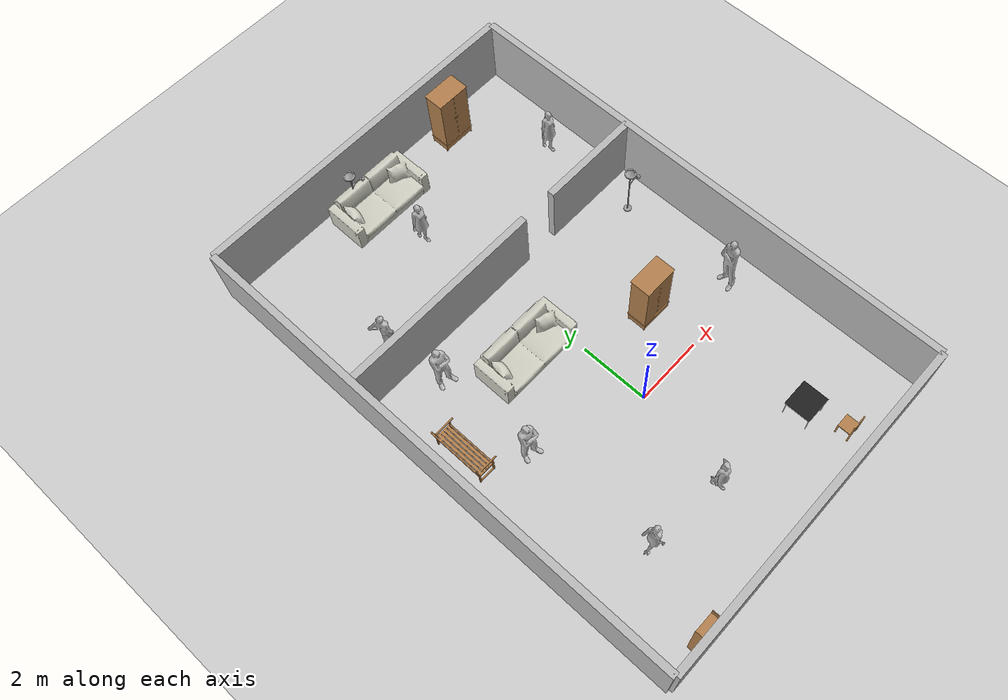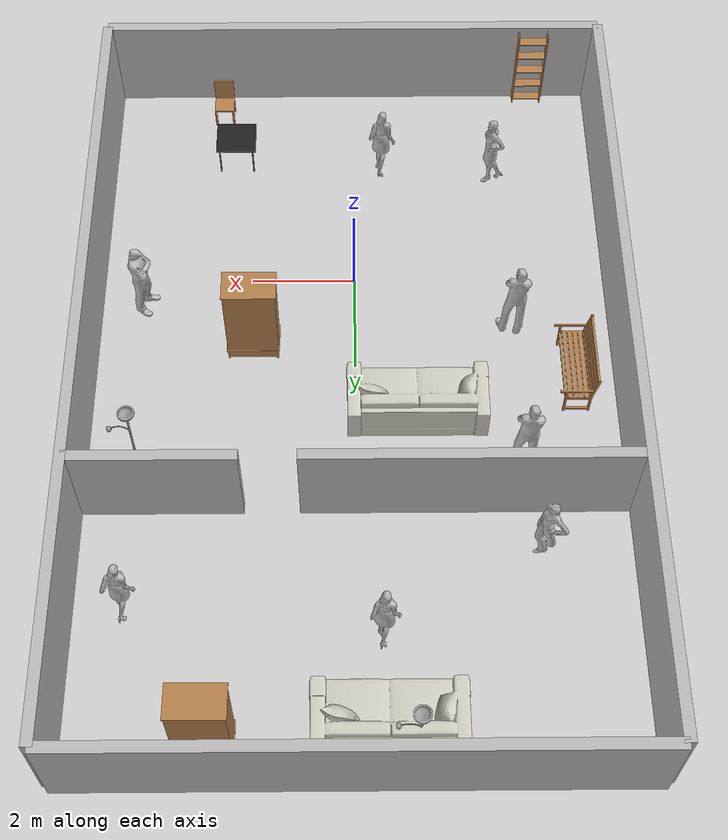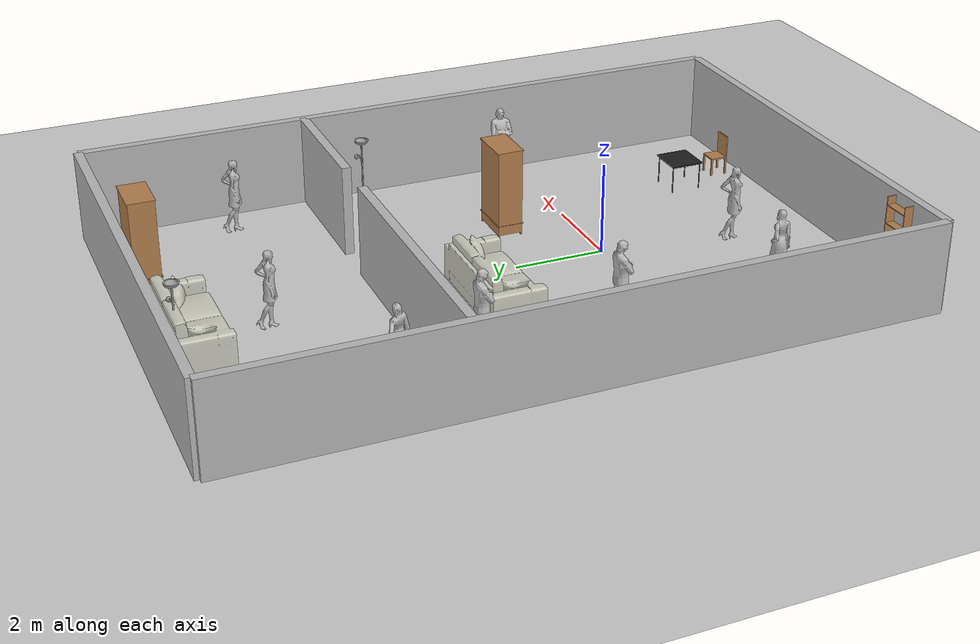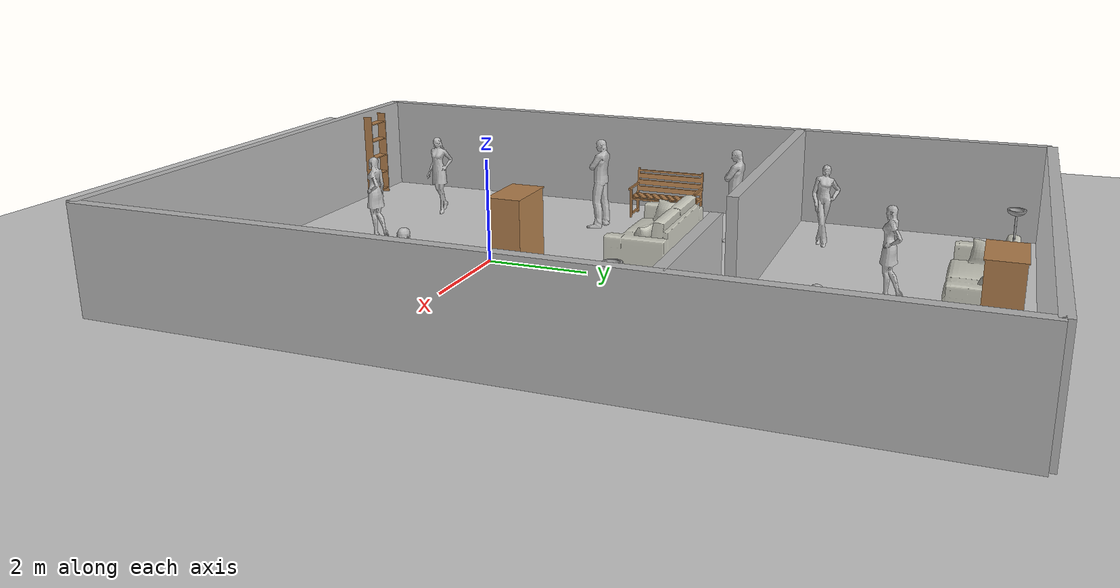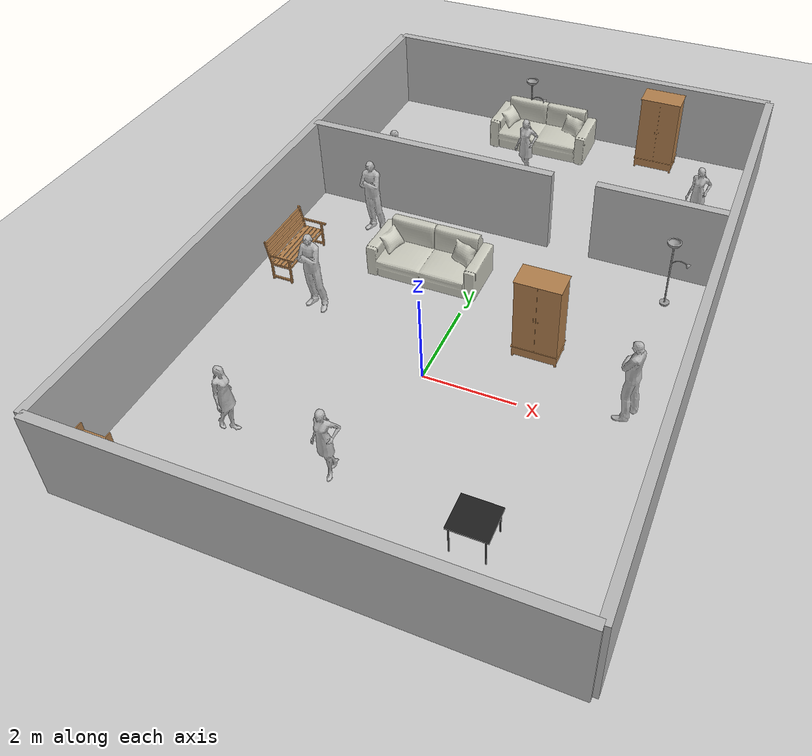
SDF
<sdf version="1.6">
 <world name="default">
  <physics name="default_physics" default="0" type="ode">
   <ode>
    <solver>
     <type>quick</type>
     <iters>20</iters>
     <sor>1</sor>
     <use_dynamic_moi_rescaling>0</use_dynamic_moi_rescaling>
    </solver>
    <constraints>
     <cfm>0</cfm>
     <erp>0.2</erp>
     <contact_max_correcting_vel>100</contact_max_correcting_vel>
     <contact_surface_layer>0</contact_surface_layer>
    </constraints>
   </ode>
   <real_time_update_rate>1000</real_time_update_rate>
   <max_step_size>0.001</max_step_size>
   <real_time_factor>1</real_time_factor>
  </physics>
  <light name="sun" type="directional">
   <pose>0 0 10 0 -0 0</pose>
   <diffuse>0.8 0.8 0.8 1</diffuse>
   <specular>0.2 0.2 0.2 1</specular>
   <attenuation>
    <range>1000</range>
    <constant>0.9</constant>
    <linear>0.01</linear>
    <quadratic>0.001</quadratic>
   </attenuation>
   <direction>-0.5 0.1 -0.9</direction>
  </light>
  <model name="ground_plane">
   <static>1</static>
   <link name="link">
    <collision name="collision">
     <geometry><plane><normal>0 0 1</normal><size>100 100</size></plane></geometry>
     <surface>
      <contact><collide_bitmask>65535</collide_bitmask></contact>
      <friction><ode><mu>100</mu><mu2>50</mu2></ode></friction>
     </surface>
    </collision>
    <visual name="visual">
     <cast_shadows>0</cast_shadows>
     <geometry><plane><normal>0 0 1</normal><size>100 100</size></plane></geometry>
     <material>
      <script><uri>file://media/materials/scripts/gazebo.material</uri><name>Gazebo/Grey</name></script>
     </material>
    </visual>
   </link>
  </model>
  <model name="wall_1_model">
   <pose>0 -5 1 0 -0 0</pose>
   <static>1</static>
   <link name="wall_1_body">
    <inertial>
     <mass>1</mass>
     <inertia><ixx>1</ixx><ixy>0</ixy><ixz>0</ixz><iyy>1</iyy><iyz>0</iyz><izz>1</izz></inertia>
    </inertial>
    <collision name="collision"><geometry><box><size>10 0.2 2</size></box></geometry></collision>
    <visual name="visual"><geometry><box><size>10 0.2 2</size></box></geometry></visual>
   </link>
  </model>
  <model name="wall_2_model">
   <pose>0 10 1 0 -0 0</pose>
   <static>1</static>
   <link name="wall_2_body">
    <inertial>
     <mass>1</mass>
     <inertia><ixx>1</ixx><ixy>0</ixy><ixz>0</ixz><iyy>1</iyy><iyz>0</iyz><izz>1</izz></inertia>
    </inertial>
    <collision name="collision"><geometry><box><size>10 0.2 2</size></box></geometry></collision>
    <visual name="visual"><geometry><box><size>10 0.2 2</size></box></geometry></visual>
   </link>
  </model>
  <model name="wall_3_model">
   <pose>-5 2.5 1 0 -0 0</pose>
   <static>1</static>
   <link name="wall_3_body">
    <inertial>
     <mass>1</mass>
     <inertia><ixx>1</ixx><ixy>0</ixy><ixz>0</ixz><iyy>1</iyy><iyz>0</iyz><izz>1</izz></inertia>
    </inertial>
    <collision name="collision"><geometry><box><size>0.2 15 2</size></box></geometry></collision>
    <visual name="visual"><geometry><box><size>0.2 15 2</size></box></geometry></visual>
   </link>
  </model>
  <model name="wall_4_model">
   <pose>5 2.5 1 0 -0 0</pose>
   <static>1</static>
   <link name="wall_4_body">
    <inertial>
     <mass>1</mass>
     <inertia><ixx>1</ixx><ixy>0</ixy><ixz>0</ixz><iyy>1</iyy><iyz>0</iyz><izz>1</izz></inertia>
    </inertial>
    <collision name="collision"><geometry><box><size>0.2 15 2</size></box></geometry></collision>
    <visual name="visual"><geometry><box><size>0.2 15 2</size></box></geometry></visual>
   </link>
  </model>
  <model name="wall_5_model">
   <pose>-2 5 1 0 -0 0</pose>
   <static>1</static>
   <link name="wall_5_body">
    <inertial>
     <mass>1</mass>
     <inertia><ixx>1</ixx><ixy>0</ixy><ixz>0</ixz><iyy>1</iyy><iyz>0</iyz><izz>1</izz></inertia>
    </inertial>
    <collision name="collision"><geometry><box><size>6 0.2 2</size></box></geometry></collision>
    <visual name="visual"><geometry><box><size>6 0.2 2</size></box></geometry></visual>
   </link>
  </model>
  <model name="wall_6_model">
   <pose>3.5 5 1 0 -0 0</pose>
   <static>1</static>
   <link name="wall_6_body">
    <inertial>
     <mass>1</mass>
     <inertia><ixx>1</ixx><ixy>0</ixy><ixz>0</ixz><iyy>1</iyy><iyz>0</iyz><izz>1</izz></inertia>
    </inertial>
    <collision name="collision"><geometry><box><size>3 0.2 2</size></box></geometry></collision>
    <visual name="visual"><geometry><box><size>3 0.2 2</size></box></geometry></visual>
   </link>
  </model>
  <model name="dining_chair">
   <static>1</static>
   <link name="link">
    <collision name="colision1">
     <geometry><mesh><uri>model://dining_chair/meshes/dining_chair.stl</uri><scale>1 1 1</scale></mesh></geometry>
    </collision>
    <visual name="visual1">
     <geometry><mesh><uri>model://dining_chair/meshes/dining_chair.stl</uri><scale>1 1 1</scale></mesh></geometry>
     <material>
      <script><uri>file://media/materials/scripts/gazebo.material</uri><name>Gazebo/Wood</name></script>
     </material>
    </visual>
    <velocity_decay><linear>0</linear><angular>0</angular></velocity_decay>
   </link>
   <pose>2.5 -4.5 0.01 0 -0 0</pose>
  </model>
  <model name="kitchen_table">
   <static>1</static>
   <link name="link">
    <collision name="colision1">
     <geometry>
      <mesh><uri>model://kitchen_table/meshes/kitchen_table.stl</uri><scale>1 1 1</scale></mesh>
     </geometry>
    </collision>
    <visual name="visual1">
     <geometry>
      <mesh><uri>model://kitchen_table/meshes/kitchen_table.stl</uri><scale>1 1 1</scale></mesh>
     </geometry>
     <material>
      <script><uri>file://media/materials/scripts/gazebo.material</uri><name>Gazebo/FlatBlack</name></script>
     </material>
    </visual>
    <velocity_decay><linear>0</linear><angular>0</angular></velocity_decay>
   </link>
   <pose>2 -3.55106 0 0 -0 0</pose>
  </model>
  <model name="wardrobe">
   <static>1</static>
   <link name="link">
    <collision name="colision1">
     <geometry><mesh><uri>model://wardrobe/meshes/wardrobe.stl</uri><scale>1 1 1</scale></mesh></geometry>
    </collision>
    <visual name="visual1">
     <geometry><mesh><uri>model://wardrobe/meshes/wardrobe.stl</uri><scale>1 1 1</scale></mesh></geometry>
     <material>
      <script><uri>file://media/materials/scripts/gazebo.material</uri><name>Gazebo/WoodPallet</name></script>
     </material>
    </visual>
    <velocity_decay><linear>0</linear><angular>0</angular></velocity_decay>
   </link>
   <pose>2 9 0 0 -0 0</pose>
  </model>
  <model name="closet">
   <static>1</static>
   <link name="link">
    <collision name="colision1">
     <geometry><mesh><uri>model://closet/meshes/closet.stl</uri><scale>1 1 1</scale></mesh></geometry>
    </collision>
    <visual name="visual1">
     <geometry><mesh><uri>model://closet/meshes/closet.stl</uri><scale>1 1 1</scale></mesh></geometry>
     <material>
      <script><uri>file://media/materials/scripts/gazebo.material</uri><name>Gazebo/WoodFloor</name></script>
     </material>
    </visual>
    <velocity_decay><linear>0</linear><angular>0</angular></velocity_decay>
   </link>
   <pose>-4 -5 0 0 -0 0</pose>
  </model>
  <model name="bench">
   <static>1</static>
   <link name="link">
    <collision name="colision1">
     <geometry><mesh><uri>model://bench/meshes/bench.stl</uri><scale>1 1 1</scale></mesh></geometry>
    </collision>
    <visual name="visual1">
     <geometry><mesh><uri>model://bench/meshes/bench.stl</uri><scale>1 1 1</scale></mesh></geometry>
     <material>
      <script><uri>file://media/materials/scripts/gazebo.material</uri><name>Gazebo/Wood</name></script>
     </material>
    </visual>
    <velocity_decay><linear>0</linear><angular>0</angular></velocity_decay>
   </link>
   <pose>-4.46543 1.50271 0 0 -0 0</pose>
  </model>
  <model name="sofa">
   <static>1</static>
   <link name="link">
    <collision name="colision1">
     <geometry><mesh><uri>model://sofa/meshes/sofa.stl</uri><scale>1 1 1</scale></mesh></geometry>
    </collision>
    <visual name="visual1">
     <geometry><mesh><uri>model://sofa/meshes/sofa.stl</uri><scale>1 1 1</scale></mesh></geometry>
     <material>
      <script><uri>file://media/materials/scripts/gazebo.material</uri><name>Gazebo/PaintedWall</name></script>
     </material>
    </visual>
    <velocity_decay><linear>0</linear><angular>0</angular></velocity_decay>
   </link>
   <pose>-0.518195 9 0 0 -0 0</pose>
  </model>
  <model name="floor_lamp_0">
   <static>1</static>
   <link name="link">
    <collision name="colision1">
     <geometry><mesh><uri>model://floor_lamp/meshes/floor_lamp.stl</uri><scale>1 1 1</scale></mesh></geometry>
    </collision>
    <visual name="visual1">
     <geometry><mesh><uri>model://floor_lamp/meshes/floor_lamp.stl</uri><scale>1 1 1</scale></mesh></geometry>
     <material>
      <script><uri>file://media/materials/scripts/gazebo.material</uri><name>Gazebo/Grey</name></script>
     </material>
    </visual>
    <velocity_decay><linear>0</linear><angular>0</angular></velocity_decay>
   </link>
   <pose>-1 9.41735 0 0 -0 0</pose>
  </model>
  <model name="floor_lamp_1">
   <static>1</static>
   <link name="link">
    <collision name="colision1">
     <geometry><mesh><uri>model://floor_lamp/meshes/floor_lamp.stl</uri><scale>1 1 1</scale></mesh></geometry>
    </collision>
    <visual name="visual1">
     <geometry><mesh><uri>model://floor_lamp/meshes/floor_lamp.stl</uri><scale>1 1 1</scale></mesh></geometry>
     <material>
      <script><uri>file://media/materials/scripts/gazebo.material</uri><name>Gazebo/Grey</name></script>
     </material>
    </visual>
    <velocity_decay><linear>0</linear><angular>0</angular></velocity_decay>
   </link>
   <pose>4 4 0 0 -0 0</pose>
  </model>
  <model name="male03">
   <link name="link">
    <inertial>
     <mass>20</mass>
     <inertia><ixx>0</ixx><ixy>0</ixy><ixz>0</ixz><iyy>0</iyy><iyz>0</iyz><izz>0</izz></inertia>
    </inertial>
    <collision name="collision">
     <geometry><mesh><uri>model://citizen_extras_male_03/meshes/mesh.dae</uri></mesh></geometry>
    </collision>
    <visual name="visual">
     <geometry><mesh><uri>model://citizen_extras_male_03/meshes/mesh.dae</uri></mesh></geometry>
    </visual>
   </link>
   <pose>4 0.53 0.010908 0.012576 0.002294 -1.718</pose>
  </model>
  <light name="male03light" type="point">
   <pose>3.6 0.53 1.6 0 -0 0</pose>
   <diffuse>0.5 0.5 0.5 1</diffuse>
   <specular>0.1 0.1 0.1 1</specular>
   <attenuation>
    <range>1</range>
    <linear>0.01</linear>
    <constant>0.3</constant>
    <quadratic>0</quadratic>
   </attenuation>
   <direction>0 0 -1</direction>
   <spot><inner_angle>0.6</inner_angle><outer_angle>0.8</outer_angle><falloff>1.2</falloff></spot>
   <cast_shadows>0</cast_shadows>
  </light>
  <model name="female02">
   <link name="link">
    <inertial>
     <mass>20</mass>
     <inertia><ixx>0</ixx><ixy>0</ixy><ixz>0</ixz><iyy>0</iyy><iyz>0</iyz><izz>0</izz></inertia>
    </inertial>
    <collision name="collision">
     <geometry><mesh><uri>model://citizen_extras_female_02/meshes/mesh.dae</uri></mesh></geometry>
    </collision>
    <visual name="visual">
     <geometry><mesh><uri>model://citizen_extras_female_02/meshes/mesh.dae</uri></mesh></geometry>
    </visual>
   </link>
   <pose>-2.84 -2.63 0.000426 0.001611 -0.025062 1.68296</pose>
  </model>
  <light name="female02light" type="point">
   <pose>-2.5 -2.63 1.5 0 -0 0</pose>
   <diffuse>0.5 0.5 0.5 1</diffuse>
   <specular>0.1 0.1 0.1 1</specular>
   <attenuation>
    <range>1</range>
    <linear>0.01</linear>
    <constant>0.3</constant>
    <quadratic>0</quadratic>
   </attenuation>
   <direction>0 0 -1</direction>
   <spot><inner_angle>0.6</inner_angle><outer_angle>0.8</outer_angle><falloff>1.2</falloff></spot>
   <cast_shadows>0</cast_shadows>
  </light>
  <model name="female03">
   <link name="link">
    <inertial>
     <mass>20</mass>
     <inertia><ixx>0</ixx><ixy>0</ixy><ixz>0</ixz><iyy>0</iyy><iyz>0</iyz><izz>0</izz></inertia>
    </inertial>
    <collision name="collision">
     <geometry><mesh><uri>model://citizen_extras_female_03/meshes/mesh.dae</uri></mesh></geometry>
    </collision>
    <visual name="visual">
     <geometry><mesh><uri>model://citizen_extras_female_03/meshes/mesh.dae</uri></mesh></geometry>
    </visual>
   </link>
   <pose>-3.3 5.8 -0.003502 0.011367 0.012676 1.6451</pose>
  </model>
  <light name="female03light" type="point">
   <pose>-3 6.2 1.5 0 -0 0</pose>
   <diffuse>0.5 0.5 0.5 1</diffuse>
   <specular>0.1 0.1 0.1 1</specular>
   <attenuation>
    <range>1</range>
    <linear>0.01</linear>
    <constant>0.3</constant>
    <quadratic>0</quadratic>
   </attenuation>
   <direction>0 0 -1</direction>
   <spot><inner_angle>0.6</inner_angle><outer_angle>0.8</outer_angle><falloff>1.2</falloff></spot>
   <cast_shadows>0</cast_shadows>
  </light>
  <model name="female02bis">
   <link name="link">
    <inertial>
     <mass>20</mass>
     <inertia><ixx>0</ixx><ixy>0</ixy><ixz>0</ixz><iyy>0</iyy><iyz>0</iyz><izz>0</izz></inertia>
    </inertial>
    <collision name="collision">
     <geometry><mesh><uri>model://citizen_extras_female_02/meshes/mesh.dae</uri></mesh></geometry>
    </collision>
    <visual name="visual">
     <geometry><mesh><uri>model://citizen_extras_female_02/meshes/mesh.dae</uri></mesh></geometry>
    </visual>
   </link>
   <pose>3.99997 7.00001 0.00043 0.001547 -0.025017 -0.00017</pose>
  </model>
  <light name="female02bislight" type="point">
   <pose>3.8 6.7 1.5 0 -0 0</pose>
   <diffuse>0.5 0.5 0.5 1</diffuse>
   <specular>0.1 0.1 0.1 1</specular>
   <attenuation>
    <range>1</range>
    <linear>0.01</linear>
    <constant>0.3</constant>
    <quadratic>0</quadratic>
   </attenuation>
   <direction>0 0 -1</direction>
   <spot><inner_angle>0.6</inner_angle><outer_angle>0.8</outer_angle><falloff>1.2</falloff></spot>
   <cast_shadows>0</cast_shadows>
  </light>
  <model name="male03bis">
   <link name="link">
    <inertial>
     <mass>20</mass>
     <inertia><ixx>0</ixx><ixy>0</ixy><ixz>0</ixz><iyy>0</iyy><iyz>0</iyz><izz>0</izz></inertia>
    </inertial>
    <collision name="collision">
     <geometry><mesh><uri>model://citizen_extras_male_03/meshes/mesh.dae</uri></mesh></geometry>
    </collision>
    <visual name="visual">
     <geometry><mesh><uri>model://citizen_extras_male_03/meshes/mesh.dae</uri></mesh></geometry>
    </visual>
   </link>
   <pose>-2.99993 3.99987 0.010904 0.012552 0.00233 0.000161</pose>
  </model>
  <light name="male03bislight" type="point">
   <pose>-2.9 3.7 1.5 0 -0 0</pose>
   <diffuse>0.5 0.5 0.5 1</diffuse>
   <specular>0.1 0.1 0.1 1</specular>
   <attenuation>
    <range>1</range>
    <linear>0.01</linear>
    <constant>0.3</constant>
    <quadratic>0</quadratic>
   </attenuation>
   <direction>0 0 -1</direction>
   <spot><inner_angle>0.6</inner_angle><outer_angle>0.8</outer_angle><falloff>1.2</falloff></spot>
   <cast_shadows>0</cast_shadows>
  </light>
  <gravity>0 0 -9.81</gravity>
  <magnetic_field>6e-06 2.3e-05 -4.2e-05</magnetic_field>
  <atmosphere type="adiabatic"/>
  <scene><ambient>0.4 0.4 0.4 1</ambient><background>0.7 0.7 0.7 1</background><shadows>1</shadows></scene>
  <audio><device>default</device></audio>
  <spherical_coordinates>
   <surface_model>EARTH_WGS84</surface_model>
   <latitude_deg>0</latitude_deg>
   <longitude_deg>0</longitude_deg>
   <elevation>0</elevation>
   <heading_deg>0</heading_deg>
  </spherical_coordinates>
  <model name="sofa_0">
   <static>1</static>
   <link name="link">
    <collision name="colision1">
     <geometry><mesh><uri>model://sofa/meshes/sofa.stl</uri><scale>1 1 1</scale></mesh></geometry>
    </collision>
    <visual name="visual1">
     <geometry><mesh><uri>model://sofa/meshes/sofa.stl</uri><scale>1 1 1</scale></mesh></geometry>
     <material>
      <script><uri>file://media/materials/scripts/gazebo.material</uri><name>Gazebo/PaintedWall</name></script>
     </material>
    </visual>
    <velocity_decay><linear>0</linear><angular>0</angular></velocity_decay>
   </link>
   <pose>-1.14431 2.94169 0 0 -0 0</pose>
  </model>
  <model name="wardrobe_0">
   <static>1</static>
   <link name="link">
    <collision name="colision1">
     <geometry><mesh><uri>model://wardrobe/meshes/wardrobe.stl</uri><scale>1 1 1</scale></mesh></geometry>
    </collision>
    <visual name="visual1">
     <geometry><mesh><uri>model://wardrobe/meshes/wardrobe.stl</uri><scale>1 1 1</scale></mesh></geometry>
     <material>
      <script><uri>file://media/materials/scripts/gazebo.material</uri><name>Gazebo/WoodPallet</name></script>
     </material>
    </visual>
    <velocity_decay><linear>0</linear><angular>0</angular></velocity_decay>
   </link>
   <pose>1.42665 1.20586 0 0 -0 0</pose>
  </model>
  <model name="citizen_extras_female_02">
   <link name="link">
    <inertial>
     <mass>20</mass>
     <inertia><ixx>0</ixx><ixy>0</ixy><ixz>0</ixz><iyy>0</iyy><iyz>0</iyz><izz>0</izz></inertia>
    </inertial>
    <collision name="collision">
     <geometry><mesh><uri>model://citizen_extras_female_02/meshes/mesh.dae</uri></mesh></geometry>
    </collision>
    <visual name="visual">
     <geometry><mesh><uri>model://citizen_extras_female_02/meshes/mesh.dae</uri></mesh></geometry>
    </visual>
   </link>
   <pose>-0.566172 -2.80092 0.000421 0.001543 -0.024848 -0.00017</pose>
  </model>
  <model name="citizen_extras_male_03">
   <link name="link">
    <inertial>
     <mass>20</mass>
     <inertia><ixx>0</ixx><ixy>0</ixy><ixz>0</ixz><iyy>0</iyy><iyz>0</iyz><izz>0</izz></inertia>
    </inertial>
    <collision name="collision">
     <geometry><mesh><uri>model://citizen_extras_male_03/meshes/mesh.dae</uri></mesh></geometry>
    </collision>
    <visual name="visual">
     <geometry><mesh><uri>model://citizen_extras_male_03/meshes/mesh.dae</uri></mesh></geometry>
    </visual>
   </link>
   <pose>-2.96866 1.07079 0.010908 0.012578 0.002292 0.000161</pose>
  </model>
  <model name="citizen_extras_female_02_0">
   <link name="link">
    <inertial>
     <mass>20</mass>
     <inertia><ixx>0</ixx><ixy>0</ixy><ixz>0</ixz><iyy>0</iyy><iyz>0</iyz><izz>0</izz></inertia>
    </inertial>
    <collision name="collision">
     <geometry><mesh><uri>model://citizen_extras_female_02/meshes/mesh.dae</uri></mesh></geometry>
    </collision>
    <visual name="visual">
     <geometry><mesh><uri>model://citizen_extras_female_02/meshes/mesh.dae</uri></mesh></geometry>
    </visual>
   </link>
   <pose>-0.463193 7.49808 0.000427 0.001614 -0.025122 -0.000172</pose>
  </model>
 </world>
</sdf>
